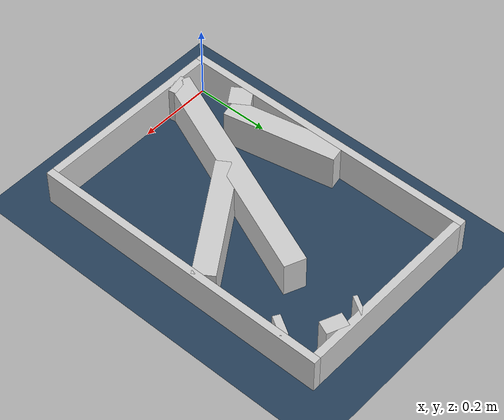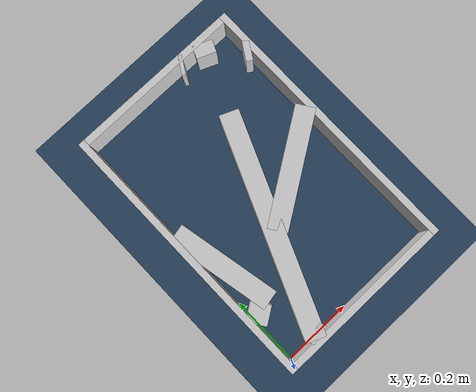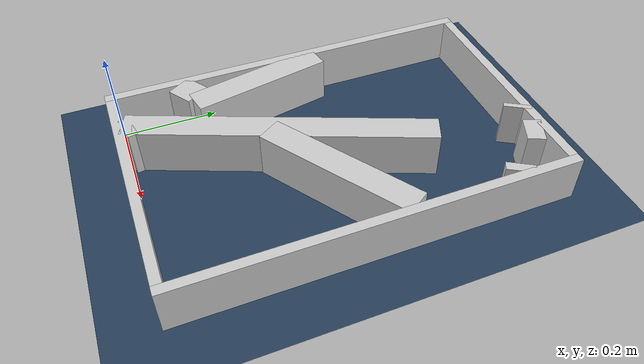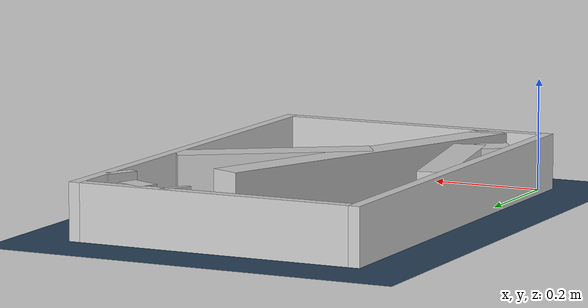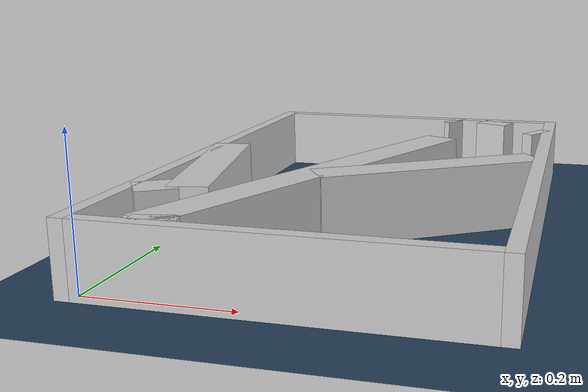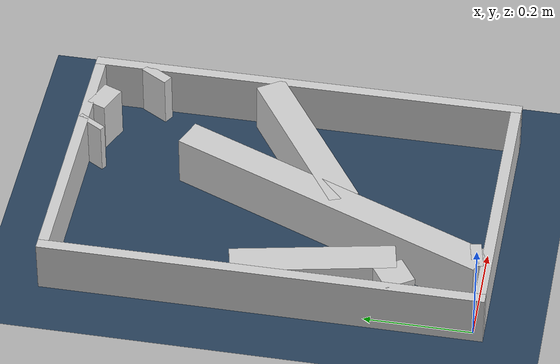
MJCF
<?xml version="1.0" ?>
<mujoco model="generated_real_template">
  <compiler angle="degree"/>
  <option timestep="0.002" integrator="implicitfast" iterations="100" cone="elliptic"/>
  <default>
    <geom density="1"/>
  </default>
  <asset>
    <texture builtin="gradient" height="3072" rgb1="0.3 0.5 0.7" rgb2="0 0 0" type="skybox" width="512"/>
    <texture builtin="checker" height="300" mark="edge" markrgb="0.8 0.8 0.8" name="groundplane" rgb1="0.2 0.3 0.4" rgb2="0.1 0.2 0.3" type="2d" width="300"/>
    <material name="groundplane" reflectance="0.2" texrepeat="5 5" texture="groundplane" texuniform="true"/>
  </asset>
  <worldbody>
    <light dir="0 0 -1" directional="true" pos="0 0 1.5"/>
    <geom name="floor" type="plane" condim="4" friction="0.5 0.005 0.001" material="groundplane" size="0 0 0.05"/>
    <body name="walls">
      <geom name="wall_boundary_left" type="box" condim="4" friction="1.0 0.005 0.0001" rgba="0.8 0.8 0.8 1" pos="-0.010000 0.387500 0.050000" euler="0 0 0.000000" size="0.010000 0.407500 0.050000"/>
      <geom name="wall_boundary_right" type="box" condim="4" friction="1.0 0.005 0.0001" rgba="0.8 0.8 0.8 1" pos="0.500000 0.387500 0.050000" euler="0 0 0.000000" size="0.010000 0.407500 0.050000"/>
      <geom name="wall_boundary_bottom" type="box" condim="4" friction="1.0 0.005 0.0001" rgba="0.8 0.8 0.8 1" pos="0.245000 -0.010000 0.050000" euler="0 0 0.000000" size="0.245000 0.010000 0.050000"/>
      <geom name="wall_boundary_top" type="box" condim="4" friction="1.0 0.005 0.0001" rgba="0.8 0.8 0.8 1" pos="0.245000 0.785000 0.050000" euler="0 0 0.000000" size="0.245000 0.010000 0.050000"/>
      <geom name="wall_inner_1_1" type="box" condim="4" friction="1.0 0.005 0.0001" rgba="0.8 0.8 0.8 1" pos="0.037788 0.299010 0.050000" euler="0 0 -78.511692" size="0.149914 0.028500 0.050000"/>
      <geom name="wall_inner_1_2" type="box" condim="4" friction="1.0 0.005 0.0001" rgba="0.8 0.8 0.8 1" pos="0.096499 0.010135 0.050000" euler="0 0 -78.511692" size="0.010342 0.028500 0.050000"/>
      <geom name="wall_inner_2_1" type="box" condim="4" friction="1.0 0.005 0.0001" rgba="0.8 0.8 0.8 1" pos="0.481617 0.674210 0.050000" euler="0 0 148.848263" size="0.009795 0.028500 0.050000"/>
      <geom name="wall_inner_2_2" type="box" condim="4" friction="1.0 0.005 0.0001" rgba="0.8 0.8 0.8 1" pos="0.326938 0.767710 0.050000" euler="0 0 148.848263" size="0.005604 0.028500 0.050000"/>
      <geom name="wall_inner_3_1" type="box" condim="4" friction="1.0 0.005 0.0001" rgba="0.8 0.8 0.8 1" pos="0.023517 0.149236 0.050000" euler="0 0 33.430099" size="0.028179 0.028500 0.050000"/>
      <geom name="wall_inner_3_2" type="box" condim="4" friction="1.0 0.005 0.0001" rgba="0.8 0.8 0.8 1" pos="0.347156 0.362881 0.050000" euler="0 0 33.430099" size="0.171161 0.028500 0.050000"/>
      <geom name="wall_inner_4_1" type="box" condim="4" friction="1.0 0.005 0.0001" rgba="0.8 0.8 0.8 1" pos="0.206284 0.292914 0.050000" euler="0 0 67.309960" size="0.317486 0.028500 0.050000"/>
      <geom name="wall_inner_4_2" type="box" condim="4" friction="1.0 0.005 0.0001" rgba="0.8 0.8 0.8 1" pos="0.400707 0.757925 0.050000" euler="0 0 67.309960" size="0.018508 0.028500 0.050000"/>
    </body>
  </worldbody>
</mujoco>
